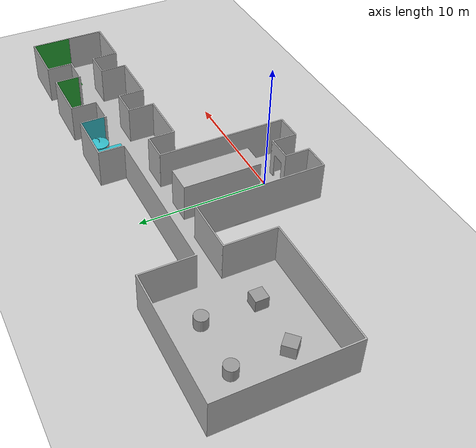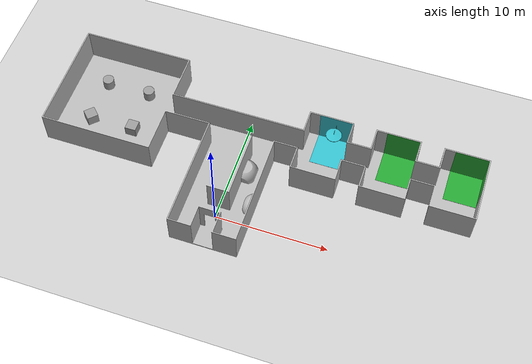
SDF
<sdf version="1.6">
  <world name="default">

    <include>
      <uri>model://ground_plane</uri>
    </include>

    <include>
      <uri>model://sun</uri>
    </include>

    <model name="building">
      <pose>6 -6 0  0 0 0</pose>
      <static>true</static>
      <link name="body">
        <visual name="visual">
          <geometry>
            <mesh>
              <uri>model://meshes/building.stl</uri>
              <scale>0.01 0.01 0.01</scale>
            </mesh>
          </geometry>
        </visual>
        <collision name="visual">
          <geometry>
            <mesh>
              <uri>model://meshes/building.stl</uri>
              <scale>0.01 0.01 0.01</scale>
            </mesh>
          </geometry>
        </collision>
      </link>
    </model>

    <model name="obstacle1">
      <pose>1 5 0  0 0 1.5707</pose>
      <static>true</static>
      <link name="body">
        <visual name="visual">
          <geometry>
            <mesh>
              <uri>model://meshes/obstacle.stl</uri>
              <scale>0.01 0.01 0.01</scale>
            </mesh>
          </geometry>
        </visual>
        <collision name="visual">
          <geometry>
            <mesh>
              <uri>model://meshes/obstacle.stl</uri>
              <scale>0.01 0.01 0.01</scale>
            </mesh>
          </geometry>
        </collision>
      </link>
    </model>

    <model name="obstacle2">
      <pose>3 2 0 0 0 -1.5707</pose>
      <static>true</static>
      <link name="body">
        <visual name="visual">
          <geometry>
            <mesh>
              <uri>model://meshes/obstacle.stl</uri>
              <scale>0.01 0.01 0.01</scale>
            </mesh>
          </geometry>
        </visual>
        <collision name="visual">
          <geometry>
            <mesh>
              <uri>model://meshes/obstacle.stl</uri>
              <scale>0.01 0.01 0.01</scale>
            </mesh>
          </geometry>
        </collision>
      </link>
    </model>

    <model name="box1">
      <static>true</static>
      <pose>-14 6 0.5 0 0 0.785398</pose>
      <link name="link">
        <visual name="visual">
          <geometry>
            <box>
              <size>1.0 1.0 1.0</size>
            </box>
          </geometry>
          <material>
            <script>
              <uri>model://materials/assessment_materials.material</uri>
              <name>grey</name>
            </script>
          </material>
        </visual>
        <collision name="collision">
          <geometry>
            <box>
              <size>1.0 1.0 1.0</size>
            </box>
          </geometry>
      </collision>
      </link>
    </model>

    <model name="box2">
      <static>true</static>
      <pose>-10 6 0.5 0 0 0</pose>
      <link name="link">
        <visual name="visual">
          <geometry>
            <box>
              <size>1.0 1.0 1.0</size>
            </box>
          </geometry>
          <material>
            <script>
              <uri>model://materials/assessment_materials.material</uri>
              <name>grey</name>
            </script>
          </material>
        </visual>
        <collision name="collision">
          <geometry>
            <box>
              <size>1.0 1.0 1.0</size>
            </box>
          </geometry>
      </collision>
      </link>
    </model>

    <model name="cylinder1">
      <static>true</static>
      <pose>-14 10 0.5 0 0 0</pose>
      <link name="link">
        <visual name="visual">
          <geometry>
            <cylinder>
              <radius>0.5</radius>
              <length>1.0</length>
            </cylinder>
          </geometry>
          <material>
            <script>
              <uri>model://materials/assessment_materials.material</uri>
              <name>grey</name>
            </script>
          </material>
        </visual>
        <collision name="collision">
          <geometry>
            <cylinder>
              <radius>0.5</radius>
              <length>1.0</length>
            </cylinder>
          </geometry>
      </collision>
      </link>
    </model>

    <model name="cylinder2">
      <static>true</static>
      <pose>-10 10 0.5 0 0 0</pose>
      <link name="link">
        <visual name="visual">
          <geometry>
            <cylinder>
              <radius>0.5</radius>
              <length>1.0</length>
            </cylinder>
          </geometry>
          <material>
            <script>
              <uri>model://materials/assessment_materials.material</uri>
              <name>grey</name>
            </script>
          </material>
        </visual>
        <collision name="collision">
          <geometry>
            <cylinder>
              <radius>0.5</radius>
              <length>1.0</length>
            </cylinder>
          </geometry>
      </collision>
      </link>
    </model>

    <model name="storage1">
      <pose>19.5 9.4 0.05 0 0 0</pose>
      <static>true</static>
      <link name="body">
        <visual name="visual">
          <geometry>
            <mesh>
              <uri>model://meshes/decontamination_zone.stl</uri>
              <scale>0.01 0.01 0.01</scale>
            </mesh>
          </geometry>
          <material>
            <script>
              <uri>model://materials/assessment_materials.material</uri>
              <name>seagreen</name>
            </script>
          </material>
        </visual>
        <collision name="visual">
          <geometry>
            <mesh>
              <uri>model://meshes/decontamination_zone.stl</uri>
              <scale>0.01 0.01 0.01</scale>
            </mesh>
          </geometry>
        </collision>
      </link>

      <link name="back_wall">
        <pose>0 1.5 1.5 1.5707 0 0</pose>
        <visual name="visual">
          <geometry>
            <mesh>
              <uri>model://meshes/decontamination_zone.stl</uri>
              <scale>0.01 0.01 0.01</scale>
            </mesh>
          </geometry>
          <material>
            <script>
              <uri>model://materials/assessment_materials.material</uri>
              <name>seagreen</name>
            </script>
          </material>
        </visual>
        <collision name="visual">
          <geometry>
            <mesh>
              <uri>model://meshes/decontamination_zone.stl</uri>
              <scale>0.01 0.01 0.01</scale>
            </mesh>
          </geometry>
        </collision>
      </link>

      <link name="side_wall">
        <pose>1.4 0 1.5 0 1.5707 0</pose>
        <visual name="visual">
          <geometry>
            <mesh>
              <uri>model://meshes/decontamination_zone.stl</uri>
              <scale>0.01 0.01 0.01</scale>
            </mesh>
          </geometry>
          <material>
            <script>
              <uri>model://materials/assessment_materials.material</uri>
              <name>seagreen</name>
            </script>
          </material>
        </visual>
        <collision name="visual">
          <geometry>
            <mesh>
              <uri>model://meshes/decontamination_zone.stl</uri>
              <scale>0.01 0.01 0.01</scale>
            </mesh>
          </geometry>
        </collision>
      </link>
    </model>

    <model name="storage2">
      <pose>13.5 9.4 0.05 0 0 0</pose>
      <static>true</static>
      <link name="body">
        <visual name="visual">
          <geometry>
            <mesh>
              <uri>model://meshes/decontamination_zone.stl</uri>
              <scale>0.01 0.01 0.01</scale>
            </mesh>
          </geometry>
          <material>
            <script>
              <uri>model://materials/assessment_materials.material</uri>
              <name>seagreen</name>
            </script>
          </material>
        </visual>
        <collision name="visual">
          <geometry>
            <mesh>
              <uri>model://meshes/decontamination_zone.stl</uri>
              <scale>0.01 0.01 0.01</scale>
            </mesh>
          </geometry>
        </collision>
      </link>

      <link name="back_wall">
        <pose>0 1.5 1.5 1.5707 0 0</pose>
        <visual name="visual">
          <geometry>
            <mesh>
              <uri>model://meshes/decontamination_zone.stl</uri>
              <scale>0.01 0.01 0.01</scale>
            </mesh>
          </geometry>
          <material>
            <script>
              <uri>model://materials/assessment_materials.material</uri>
              <name>seagreen</name>
            </script>
          </material>
        </visual>
        <collision name="visual">
          <geometry>
            <mesh>
              <uri>model://meshes/decontamination_zone.stl</uri>
              <scale>0.01 0.01 0.01</scale>
            </mesh>
          </geometry>
        </collision>
      </link>

      <link name="side_wall">
        <pose>1.4 0.6 1.5 0 1.5707 0</pose>
        <visual name="visual">
          <geometry>
            <mesh>
              <uri>model://meshes/decontamination_zone.stl</uri>
              <scale>0.01 0.006 0.01</scale>
            </mesh>
          </geometry>
          <material>
            <script>
              <uri>model://materials/assessment_materials.material</uri>
              <name>seagreen</name>
            </script>
          </material>
        </visual>
        <collision name="visual">
          <geometry>
            <mesh>
              <uri>model://meshes/decontamination_zone.stl</uri>
              <scale>0.01 0.006 0.01</scale>
            </mesh>
          </geometry>
        </collision>
      </link>
    </model>

    <model name="decontamination">
      <pose>7.5 9.4 0.05 0 0 0</pose>
      <static>true</static>
      <link name="body">
        <visual name="visual">
          <geometry>
            <mesh>
              <uri>model://meshes/decontamination_zone.stl</uri>
              <scale>0.01 0.01 0.01</scale>
            </mesh>
          </geometry>
          <material>
            <script>
              <uri>model://materials/assessment_materials.material</uri>
              <name>cyan</name>
            </script>
          </material>
        </visual>
        <collision name="visual">
          <geometry>
            <mesh>
              <uri>model://meshes/decontamination_zone.stl</uri>
              <scale>0.01 0.01 0.01</scale>
            </mesh>
          </geometry>
        </collision>
      </link>
      <link name="shower">
        <pose>0 1.47 0 0 0 -1.5707</pose>
        <visual name="visual">
          <geometry>
            <mesh>
              <uri>model://meshes/shower.stl</uri>
              <scale>0.01 0.01 0.01</scale>
            </mesh>
          </geometry>
          <material>
            <script>
              <uri>model://materials/assessment_materials.material</uri>
              <name>cyan</name>
            </script>
          </material>
        </visual>
        <collision name="visual">
          <geometry>
            <mesh>
              <uri>model://meshes/shower.stl</uri>
              <scale>0.01 0.01 0.01</scale>
            </mesh>
          </geometry>
        </collision>
      </link>
      <link name="back_wall">
        <pose>0 1.5 1.5 1.5707 0 0</pose>
        <visual name="visual">
          <geometry>
            <mesh>
              <uri>model://meshes/decontamination_zone.stl</uri>
              <scale>0.01 0.01 0.01</scale>
            </mesh>
          </geometry>
          <material>
            <script>
              <uri>model://materials/assessment_materials.material</uri>
              <name>cyan</name>
            </script>
          </material>
        </visual>
        <collision name="visual">
          <geometry>
            <mesh>
              <uri>model://meshes/decontamination_zone.stl</uri>
              <scale>0.01 0.01 0.01</scale>
            </mesh>
          </geometry>
        </collision>
      </link>

      <link name="side_wall">
        <pose>1.4 0.6 1.5 0 1.5707 0</pose>
        <visual name="visual">
          <geometry>
            <mesh>
              <uri>model://meshes/decontamination_zone.stl</uri>
              <scale>0.01 0.006 0.01</scale>
            </mesh>
          </geometry>
          <material>
            <script>
              <uri>model://materials/assessment_materials.material</uri>
              <name>cyan</name>
            </script>
          </material>
        </visual>
        <collision name="visual">
          <geometry>
            <mesh>
              <uri>model://meshes/decontamination_zone.stl</uri>
              <scale>0.01 0.006 0.01</scale>
            </mesh>
          </geometry>
        </collision>
      </link>
    </model>

    <scene>
      <shadows>false</shadows>
    </scene>

    <gui fullscreen="0">
      <camera name="user_camera">
        <pose>9.90905 -21.2979 23.032 0 0.697796 1.8056</pose>
        <view_controller>orbit</view_controller>
        <projection_type>perspective</projection_type>
      </camera>
    </gui>

    <physics type="ode">
      <real_time_update_rate>1000.0</real_time_update_rate>
      <max_step_size>0.001</max_step_size>
      <real_time_factor>1</real_time_factor>
      <ode>
        <solver>
          <type>quick</type>
          <iters>150</iters>
          <precon_iters>0</precon_iters>
          <sor>1.400000</sor>
          <use_dynamic_moi_rescaling>1</use_dynamic_moi_rescaling>
        </solver>
        <constraints>
          <cfm>0.00001</cfm>
          <erp>0.2</erp>
          <contact_max_correcting_vel>2000.000000</contact_max_correcting_vel>
          <contact_surface_layer>0.01000</contact_surface_layer>
        </constraints>
      </ode>
    </physics>

    <plugin name="ros_link_attacher_plugin" filename="libgazebo_ros_link_attacher_plugin.so" />
    <plugin name="gazebo_ros_state" filename="libgazebo_ros_state.so">
      <update_rate>10</update_rate>
    </plugin>
  </world>
</sdf>
